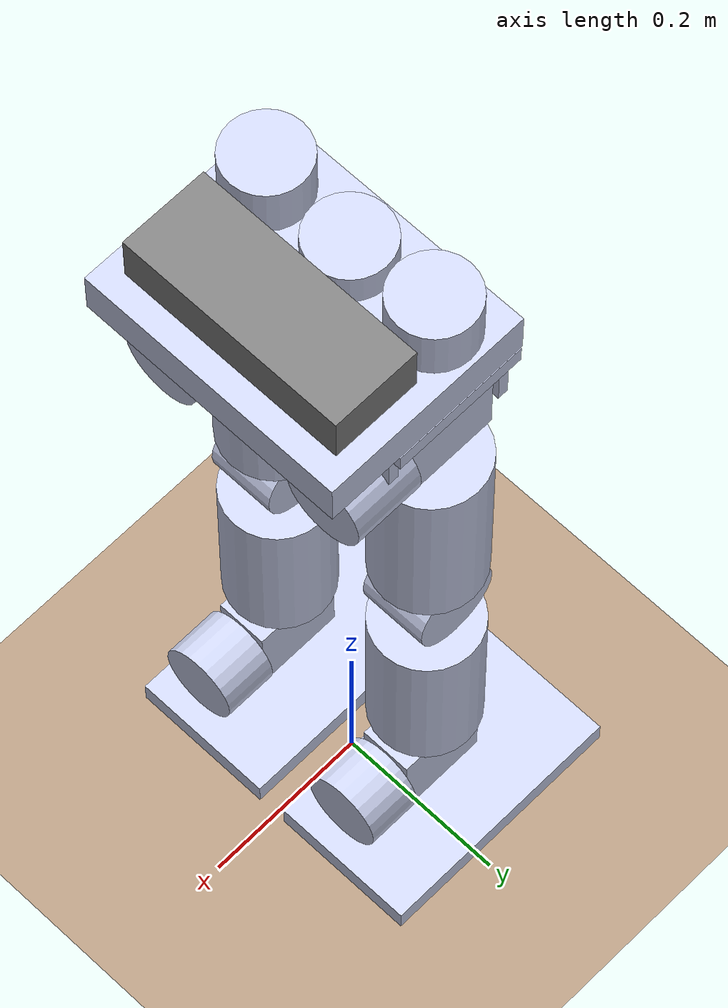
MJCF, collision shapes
<mujoco model="dyros_tocabi_description">
    <compiler angle="radian" meshdir="../meshes/" balanceinertia="true"/>
    <size njmax="500" nconmax="100" />

   <default>
        <joint damping="4.0" frictionloss="1.0"/>
        <motor ctrllimited="true" ctrlrange="-300 300"/>
        <default class="viz">
            <geom contype="0" conaffinity="0" group="1" type="mesh" rgba=".6 .6 .7 1"/>
        </default>
        <default class="cls">
            <geom group="2" rgba="0.79216 0.81961 0.93333 0.5"/>
        </default>
        <default class="cls_f">
            <geom group="2" rgba="0.79216 0.81961 0.93333 0.1" friction="1 0.005 0.0001"/>
        </default>
        <default class="FTsensor">
            <site type="cylinder" size="0.005 0.005" group="4" rgba=".1 .1 .9 1"/>
        </default>
    </default>

    <option timestep='0.0005' iterations="100" tolerance="1e-11" solver="Newton" jacobian="dense" cone="elliptic" noslip_iterations="75" noslip_tolerance="1e-9" />

    <visual>
        <quality shadowsize="2048" offsamples="16"/>
        <map stiffness="10" znear="0.05"/>
    </visual>

    <asset>
        <mesh name="Pelvis_link" file="Pelvis_link2.STL" scale="0.001 0.001 0.001"/>
        <mesh name="HipRoll_R_link" file="HipRoll_R_link.STL" />
        <mesh name="HipCenter_R_Link" file="HipCenter_R_Link.STL" />
        <mesh name="Thigh_R_Link" file="Thigh_R_Link.STL" />
        <mesh name="Knee_R_Link" file="Knee_R_Link.STL" />
        <mesh name="AnkleCenter_R_Link" file="AnkleCenter_R_Link.STL" />
        <mesh name="AnkleRoll_R_Link" file="AnkleRoll_R_Link.STL" />
        <mesh name="HipRoll_L_Link" file="HipRoll_L_Link.STL" />
        <mesh name="HipCenter_L_Link" file="HipCenter_L_Link.STL" />
        <mesh name="Thigh_L_Link" file="Thigh_L_Link.STL" />
        <mesh name="Knee_L_Link" file="Knee_L_Link.STL" />
        <mesh name="AnkleCenter_L_Link" file="AnkleCenter_L_Link.STL" />
        <mesh name="AnkleRoll_L_Link" file="AnkleRoll_L_Link.STL" />
        <mesh name="waist1" file="waistyaw.STL" scale="0.001 0.001 0.001"/>
        <mesh name="waist2" file="waist2.STL" />
        <mesh name="upperbody" file="upperbody.STL" />
        <mesh name="R_shoulder1" file="R_shoulder1.STL" />
        <mesh name="R_shoulder2" file="R_shoulder2.STL" />
        <mesh name="R_shoulder3" file="R_shoulder3.STL" />
        <mesh name="R_arm" file="R_arm.STL" />
        <mesh name="R_elbow" file="R_elbow.STL" />
        <mesh name="R_forearm" file="R_forearm.STL" />
        <mesh name="R_wrist1" file="R_wrist1.STL" />
        <mesh name="L_shoulder1" file="L_shoulder1.STL" />
        <mesh name="L_shoulder2" file="L_shoulder2.STL" />
        <mesh name="L_shoulder3" file="L_shoulder3.STL" />
        <mesh name="L_arm" file="L_arm.STL" />
        <mesh name="L_elbow" file="L_elbow.STL" />
        <mesh name="L_forearm" file="L_forearm.STL" />
        <mesh name="L_wrist1" file="L_wrist1.STL" />
        <mesh name="neck" file="neck.STL" />
        <mesh name="head" file="head.STL" />
        <mesh name="hand" file="wrist2joint.STL" scale="0.001 0.001 0.001"/>
        <mesh name="Foot_Link" file="Foot_Link.STL"/>
        <!--texture type="skybox" builtin="gradient" width="128" height="128" rgb1="1 1 1" rgb2="0 0 0"/-->
        <texture type="skybox" builtin="gradient" width="128" height="128" rgb1="0.4 0.6 0.8" rgb2="0 0 0"/>
        <texture name="texgeom" type="cube" builtin="flat" mark="cross" width="128" height="128" rgb1="0.6 0.6 0.6" rgb2="0.6 0.6 0.6" markrgb="1 1 1"/>
        <texture name="texplane" type="2d" builtin="checker" rgb1=".4 .4 .4" rgb2=".6 .6 .6" width="512" height="512"/>
        <material name='geom' texture="texgeom" texuniform="true"/>
        <material name='MatPlane' reflectance='0.3' texture="texplane" texrepeat="1 1" texuniform="true"/>
        <material name='MatPlane2' reflectance='0.3' />
    </asset>

    <worldbody>
         <geom name="ground" type="plane" pos="0 0 0" size="10 10 .05" rgba="0.7 0.6 0.5 1" material="MatPlane2" group="3"/>
        <light directional="true" diffuse=".8 .8 .8" pos="0 0 10" dir="0 0 -10"/>
        <light directional="true" diffuse=".5 .5 .5" pos="10 0 0" dir="-10 0 0"/>

        <body name="base_link" pos="0 0 1" euler="0 0 3.1415">
            <joint name="virtual_joint" type="free" limited='false' frictionloss="0" damping="0" stiffness="0" armature="0"/>
            <inertial pos="-0.03191 0.00017 0.01985" mass="12.19525" fullinertia="0.101833182 0.072400662 0.144478157 -0.000070812 -0.003831096 0.000079272" />
            <geom class="viz" rgba="0.20313 0.20313 0.20313 1" quat="0.5 0.5 0.5 0.5" mesh="Pelvis_link" />
            <geom size="0.045 0.044" pos="0 0 0.019" type="cylinder" class="cls" />
            <geom size="0.045 0.055" pos="0 0.1025 0.03" type="cylinder" class="cls" />
            <geom size="0.045 0.055" pos="0 -0.1025 0.03" type="cylinder" class="cls" />
            <geom size="0.12 0.1525 0.025" pos="-0.058 0 0" type="box" class="cls" />
            <geom size="0.05 0.13 0.05" pos="-0.1 0 0.03" type="box" group="1"/>
            <site name="Pelvis_IMU" type="cylinder" size="0.005 0.005" group="4" rgba=".1 .1 .9 1"/>
            <body name="R_HipRoll_Link" pos="0 -0.1025 -0.1225">
                <inertial pos="-0.06477 0 0.05149" mass="2.679" fullinertia="0.01821 0.03121 0.2928 -1.676E-07 -0.0007745 -4.53E-09" />
                <joint name="R_HipRoll_Joint" pos="0 0 0" axis="0 0 1" limited="true" range="-3.14 3.14"   />
                <geom class="viz" rgba="0.20313 0.20313 0.20313 1" mesh="HipRoll_R_link" />
                <geom size="0.045 0.04" pos="-0.1 0 0" quat="0.707107 0 0.707107 0" type="cylinder" rgba="0.79216 0.81961 0.93333 1" />
                <geom size="0.077 0.05 0.01" pos="-0.016 0 0.085" type="box" rgba="0.79216 0.81961 0.93333 1" />
                <geom size="0.006 0.036 0.0475" pos="0.055 0 0.0475" type="box" rgba="0.79216 0.81961 0.93333 1" />
                <geom size="0.006 0.036 0.0475" pos="-0.087 0 0.0475" type="box" rgba="0.79216 0.81961 0.93333 1" />
                <body name="R_HipCenter_Link" pos="0 0 0">
                    <inertial pos="-0.04801 -0.0022 2e-05" mass="2.67" fullinertia="0.3553 0.009161 0.00876 1.725E-08 -3.236E-06 -4.778E-06" />
                    <joint name="R_HipCenter_Joint" pos="0 0 0" axis="1 0 0" limited="true" range="-3.14 3.14"   />
                    <geom class="viz" rgba="0.20313 0.20313 0.20313 1" mesh="HipCenter_R_Link" />
                    <geom size="0.05225 0.03 0.0475" pos="-0.0045 0 0" type="box" rgba="0.79216 0.81961 0.93333 1" />
                    <body name="R_Thigh_Link" pos="0 0 0">
                        <inertial pos="-0.00042 -0.00032 -0.18904" mass="5.366" fullinertia="0.2987 0.7088 0.00982 -4.284E-05 -0.000196 0.002406" />
                        <joint name="R_Thigh_Joint" pos="0 0 0" axis="0 1 0" limited="true" range="-3.14 3.14"   />
                        <geom class="viz" rgba="0.85938 0.07813 0.23438 1" mesh="Thigh_R_Link" />
                        <geom size="0.049 0.038815" pos="0 0 -0.35" quat="0.707107 0.707107 0 0" type="cylinder" rgba="0.79216 0.81961 0.93333 1" />
                        <geom size="0.06 0.10875" pos="0 0 -0.1923" type="cylinder" rgba="0.79216 0.81961 0.93333 1" />
                        <body name="R_Knee_Link" pos="0 0 -0.35">
                            <inertial pos="0.00429 0.00214 -0.1428" mass="3.883" fullinertia="0.1506 0.5588 0.007451 -2.887E-05 -0.002607 -0.001486" />
                            <joint name="R_Knee_Joint" pos="0 0 0" axis="0 1 0" limited="true" range="-3.14 3.14"   />
                            <geom class="viz" rgba="0.85938 0.07813 0.23438 1" mesh="Knee_R_Link" />
                            <geom size="0.06 0.1" pos="0 0 -0.175" type="cylinder" rgba="0.79216 0.81961 0.93333 1" />
                            <body name="R_AnkleCenter_Link" pos="0 0 -0.35">
                                <inertial pos="-0.00419 -0.0018 -0.0003" mass="2.51" fullinertia="0.002857 0.4135 0.003345 -1.422E-07 2.222E-06 4.611E-06" />
                                <joint name="R_AnkleCenter_Joint" pos="0 0 0" axis="0 1 0" limited="true" range="-3.14 3.14"   />
                                <geom class="viz" rgba="0.20313 0.20313 0.20313 1" mesh="AnkleCenter_R_Link" />
                                <geom size="0.05225 0.03 0.0475" pos="-0.0045 0 0" type="box" rgba="0.79216 0.81961 0.93333 1" />
                                <body name="R_AnkleRoll_Link" pos="0 0 0">
                                    <inertial pos="-0.05196 0.00005 -0.0219" mass="1.26426" fullinertia="0.418697 0.006211405 0.008575514 1.5176E-08 -0.001095976 -5.435E-08" />
                                    <joint name="R_AnkleRoll_Joint" pos="0 0 0" axis="1 0 0" limited="true" range="-3.14 3.14"   />
                                    <geom class="viz" rgba="0.85938 0.07813 0.23438 1" mesh="AnkleRoll_R_Link" />
                                    <geom size="0.045 0.03125" pos="-0.08875 0 0" quat="0.707107 0 -0.707107 0" type="cylinder" rgba="0.79216 0.81961 0.93333 1" />
                                    <body name="R_Foot_Link" pos="0 0 0">
                                        <inertial pos="-0.0162 8e-05 -0.1209" mass="2.326" fullinertia="0.003386409 0.012600125 0.014296 1.1237E-05 -0.000526477 -1.976E-06" />
                                        <geom class="viz" rgba="0.85938 0.07813 0.23438 1" mesh="Foot_Link" />
                                        <geom size="0.15 0.085 0.0135" pos="0.03 0 -0.145" type="box" rgba="0.79216 0.81961 0.93333 1" />
                                        <geom size="0.045 0.03125" pos="-0.08875 0 0" quat="0.707107 0 -0.707107 0" type="cylinder" rgba="0.79216 0.81961 0.93333 1" />
                                        <site class="FTsensor" name="RF_FT" pos="0 0 -0.0725"/>
                                    </body>
                                </body>
                            </body>
                        </body>
                    </body>
                </body>
            </body>
            <body name="L_HipRoll_Link" pos="0 0.1025 -0.1225">
                <inertial pos="-0.06477 0 0.05149" mass="2.679" fullinertia="0.01821 0.03121 0.2928 -1.676E-07 -0.0007745 -4.53E-09" />
                <joint name="L_HipRoll_Joint" pos="0 0 0" axis="0 0 1" limited="true" range="-3.14 3.14"   />
                <geom class="viz" rgba="0.20313 0.20313 0.20313 1" mesh="HipRoll_L_Link" />
                <geom size="0.045 0.04" pos="-0.1 0 0" quat="0.707107 0 0.707107 0" type="cylinder" rgba="0.79216 0.81961 0.93333 1" />
                <geom size="0.077 0.05 0.01" pos="-0.016 0 0.085" type="box" rgba="0.79216 0.81961 0.93333 1" />
                <geom size="0.006 0.036 0.0475" pos="0.055 0 0.0475" type="box" rgba="0.79216 0.81961 0.93333 1" />
                <geom size="0.006 0.036 0.0475" pos="-0.087 0 0.0475" type="box" rgba="0.79216 0.81961 0.93333 1" />
                <body name="L_HipCenter_Link" pos="0 0 0">
                    <inertial pos="-0.04801 0.0022 2e-05" mass="2.67" fullinertia="0.3553 0.009161 0.00876 1.725E-08 -3.236E-06 -4.778E-06" />
                    <joint name="L_HipCenter_Joint" pos="0 0 0" axis="1 0 0" limited="true" range="-3.14 3.14"   />
                    <geom class="viz" rgba="0.20313 0.20313 0.20313 1" mesh="HipCenter_L_Link" />
                    <geom size="0.05225 0.03 0.0475" pos="-0.0045 0 0" type="box" rgba="0.79216 0.81961 0.93333 1" />
                    <body name="L_Thigh_Link" pos="0 0 0">
                        <inertial pos="-0.00042 0.00032 -0.18904" mass="5.366" fullinertia="0.2987 0.7088 0.00982 -4.284E-05 -0.000196 0.002406" />
                        <joint name="L_Thigh_Joint" pos="0 0 0" axis="0 1 0" limited="true" range="-3.14 3.14"   />
                        <geom class="viz" rgba="0.85938 0.07813 0.23438 1" mesh="Thigh_L_Link" />
                        <geom size="0.049 0.038815" pos="0 0 -0.35" quat="0.707107 0.707107 0 0" type="cylinder" rgba="0.79216 0.81961 0.93333 1" />
                        <geom size="0.06 0.10875" pos="0 0 -0.1923" type="cylinder" rgba="0.79216 0.81961 0.93333 1" />
                        <body name="L_Knee_Link" pos="0 0 -0.35">
                            <inertial pos="0.00429 -0.00214 -0.1428" mass="3.883" fullinertia="0.1506 0.5588 0.007451 -2.887E-05 -0.002607 -0.001486" />
                            <joint name="L_Knee_Joint" pos="0 0 0" axis="0 1 0" limited="true" range="-3.14 3.14"   />
                            <geom class="viz" rgba="0.85938 0.07813 0.23438 1" mesh="Knee_L_Link" />
                            <geom size="0.06 0.1" pos="0 0 -0.175" type="cylinder" rgba="0.79216 0.81961 0.93333 1" />
                            <body name="L_AnkleCenter_Link" pos="0 0 -0.35">
                                <inertial pos="-0.00419 0.0018 -0.0003" mass="2.51" fullinertia="0.002857 0.4135 0.003345 -1.422E-07 2.222E-06 4.611E-06" />
                                <joint name="L_AnkleCenter_Joint" pos="0 0 0" axis="0 1 0" limited="true" range="-3.14 3.14"   />
                                <geom class="viz" rgba="0.20313 0.20313 0.20313 1" mesh="AnkleCenter_L_Link" />
                                <geom size="0.05225 0.03 0.0475" pos="-0.0045 0 0" type="box" rgba="0.79216 0.81961 0.93333 1" />
                                <body name="L_AnkleRoll_Link" pos="0 0 0">
                                    <inertial pos="-0.05196 0.00005 -0.0219" mass="1.26426" fullinertia="0.418697 0.006211405 0.008575514 1.5176E-08 -0.001095976 -5.435E-08" />
                                    <joint name="L_AnkleRoll_Joint" pos="0 0 0" axis="1 0 0" limited="true" range="-3.14 3.14"   />
                                    <geom class="viz" rgba="0.85938 0.07813 0.23438 1" mesh="AnkleRoll_L_Link" />
                                    <geom size="0.045 0.03125" pos="-0.08875 0 0" quat="0.707107 0 -0.707107 0" type="cylinder" rgba="0.79216 0.81961 0.93333 1" />
                                    <body name="L_Foot_Link" pos="0 0 0">
                                        <inertial pos="-0.0162 8e-05 -0.1209" mass="2.326" fullinertia="0.003386409 0.012600125 0.014296 1.1237E-05 -0.000526477 -1.976E-06" />
                                        <geom class="viz" rgba="0.85938 0.07813 0.23438 1" mesh="Foot_Link" />
                                        <geom size="0.15 0.085 0.0135" pos="0.03 0 -0.145" type="box" rgba="0.79216 0.81961 0.93333 1" />
                                        <geom size="0.045 0.03125" pos="-0.08875 0 0" quat="0.707107 0 -0.707107 0" type="cylinder" rgba="0.79216 0.81961 0.93333 1" />
                                        <site class="FTsensor" name="LF_FT" pos="0 0 -0.075"/>
                                    </body>
                                </body>
                            </body>
                        </body>
                    </body>
                </body>
            </body>
        </body>
    </worldbody>
    <actuator>
        <motor name="R_HipRoll_Motor" joint="R_HipRoll_Joint"/>
        <motor name="R_HipCenter_Motor" joint="R_HipCenter_Joint"/>
        <motor name="R_Thigh_Motor" joint="R_Thigh_Joint"/>
        <motor name="R_Knee_Motor" joint="R_Knee_Joint"/>
        <motor name="R_AnkleCenter_Motor" joint="R_AnkleCenter_Joint"/>
        <motor name="R_AnkleRoll_Motor" joint="R_AnkleRoll_Joint"/>

        <motor name="L_HipRoll_Motor" joint="L_HipRoll_Joint"/>
        <motor name="L_HipCenter_Motor" joint="L_HipCenter_Joint"/>
        <motor name="L_Thigh_Motor" joint="L_Thigh_Joint"/>
        <motor name="L_Knee_Motor" joint="L_Knee_Joint"/>
        <motor name="L_AnkleCenter_Motor" joint="L_AnkleCenter_Joint"/>
        <motor name="L_AnkleRoll_Motor" joint="L_AnkleRoll_Joint"/>
    </actuator>

    <sensor>
        <force name="LF_Force_sensor" site="LF_FT"/>
        <torque name="LF_Torque_sensor" site="LF_FT"/>
        <force name="RF_Force_sensor" site="RF_FT"/>
        <torque name="RF_Torque_sensor" site="RF_FT"/>

        <accelerometer name="Acc_Pelvis_IMU" site="Pelvis_IMU"/>
        <gyro name="Gyro_Pelvis_IMU" site="Pelvis_IMU"/>
        <magnetometer name="Magnet_Pelvis_IMU" site="Pelvis_IMU"/>

        <framequat name="Pelvis_quat" objtype="site" objname="Pelvis_IMU"/>
        <framelinvel name="Pelvis_linear_vel" objtype="site" objname="Pelvis_IMU"/>
        <frameangvel name="Pelvis_angular_vel" objtype="site" objname="Pelvis_IMU"/>
    </sensor>
</mujoco>
